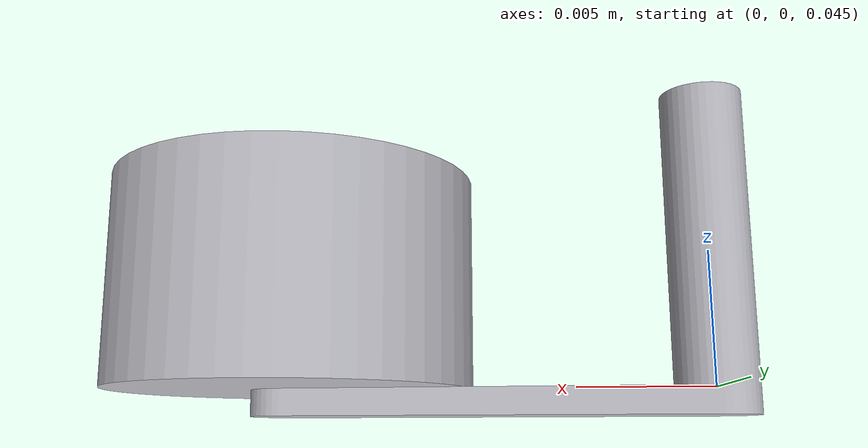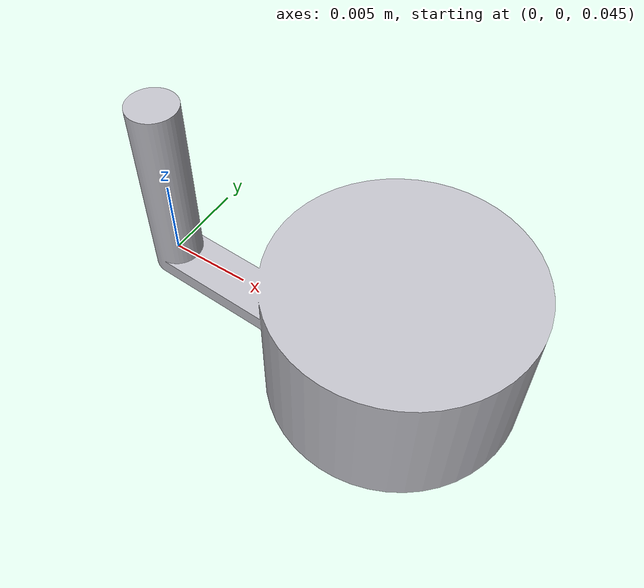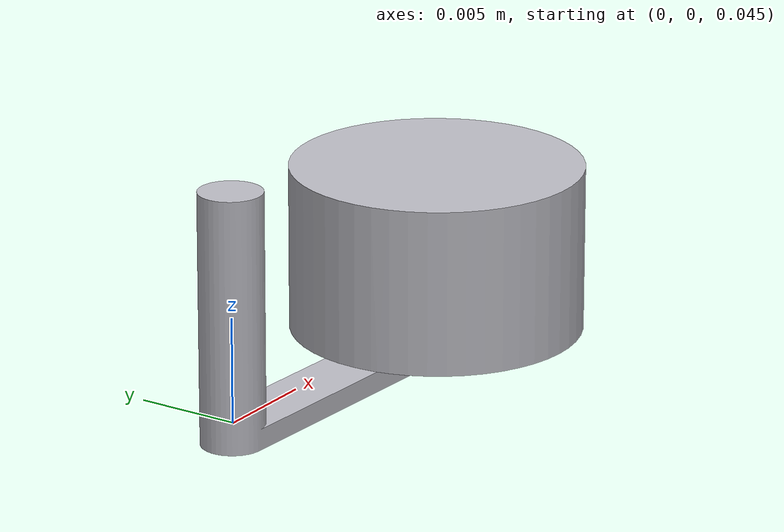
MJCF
<mujoco model="klann_leg">

  <compiler angle="degree" meshdir="meshes/"/>
  <option gravity="0 0 0" timestep="0.002"/>

  <default>
    <geom density="1200" contype="0" conaffinity="0" rgba="0.75 0.75 0.78 1"/>
    <joint type="hinge" axis="0 0 1" damping="0.002"/>
  </default>

  <asset>
    <mesh name="ground_link_m"        file="ground_link.STL"          scale="0.001 0.001 0.001"/>
    <mesh name="upper_ternary_m"      file="upper_ternary.STL"        scale="0.001 0.001 0.001"/>
    <mesh name="lower_ternary_m"      file="lower_ternary.STL"        scale="0.001 0.001 0.001"/>
    <mesh name="bent_link_m"          file="bent_link.STL"            scale="0.001 0.001 0.001"/>
    <mesh name="straight_link_m"      file="straight_link.STL"        scale="0.001 0.001 0.001"/>
    <mesh name="long_straight_link_m" file="long_straight_link.STL"   scale="0.001 0.001 0.001"/>
    <mesh name="long_bent_link_m"     file="long_bent_link.STL"       scale="0.001 0.001 0.001"/>
    <mesh name="foot_stabiliser_m"    file="foot_stabiliser_link.STL" scale="0.001 0.001 0.001"/>
    <mesh name="foot_link_m"          file="foot_link.STL"            scale="0.001 0.001 0.001"/>
  </asset>

  <worldbody>
    <light pos="0 0 1" dir="0 0 -1" diffuse="1 1 1"/>
    <camera name="side" pos="0 -0.3 0.05" xyaxes="1 0 0 0 0 1"/>

    <!-- ground_link: static frame link. Body origin placed at its pivot F,
         so children hinge at (0,0,0) in this frame. -->
    <body name="ground_link" pos="0 0 0.05">
      <geom name="ground_link_g" type="mesh" mesh="ground_link_m" pos="-0.0015 -0.0077 -0.006"/>

      <!-- crank: throw radius is a PLACEHOLDER (see note 1); position is
           solved so the crank loop (bent_link -> upper_ternary.apex) closes
           exactly at this rest pose. -->

    </body>
  </worldbody>

</mujoco>
